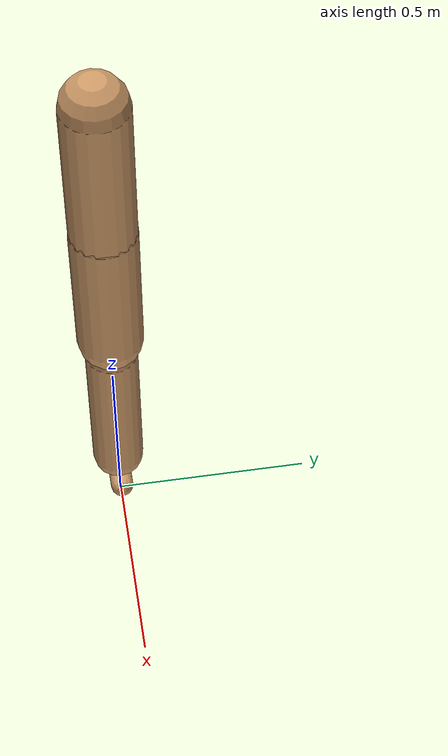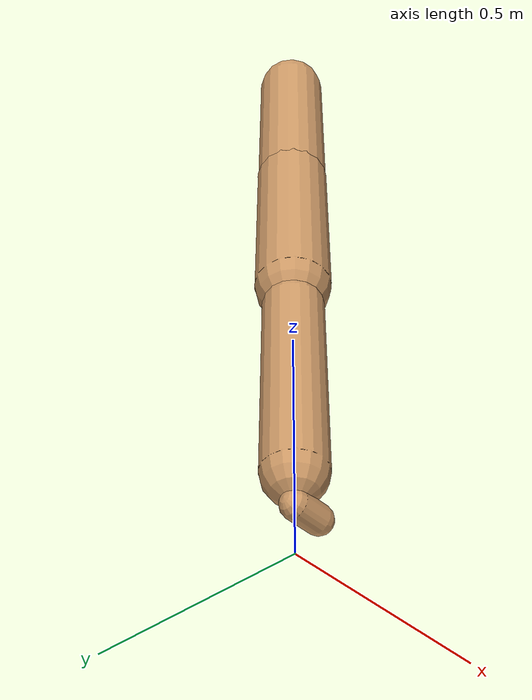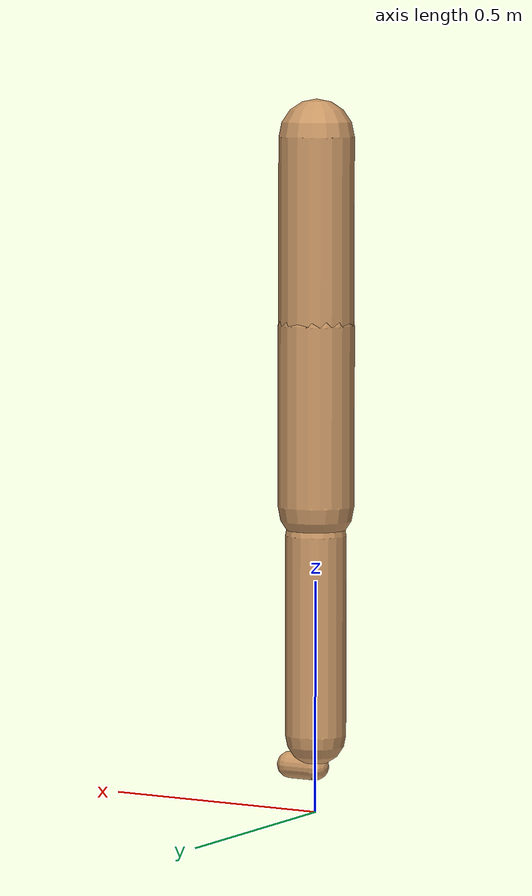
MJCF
<mujoco model="walker2d">
  <compiler angle="degree" coordinate="global" inertiafromgeom="true" />
  <default>
    <joint armature="0.01" damping=".1" limited="true" />
    <geom conaffinity="0" condim="3" contype="1" density="1000" friction="0.8 .1 .1" rgba="0.8 0.6 .4 1" />
  </default>
  <option integrator="RK4" timestep="0.002" />
  <worldbody>

    <body name="torso" pos="0 0 -0.13188718976489566">
      <joint armature="0" axis="1 0 0" damping="0" limited="false" name="ignorex" pos="0 0 0" stiffness="0" type="slide" />
      <joint armature="0" axis="0 0 1" damping="0" limited="false" name="ignorez" pos="0 0 0" ref="1.25" stiffness="0" type="slide" />
      <joint armature="0" axis="0 1 0" damping="0" limited="false" name="ignorey" pos="0 0 0" stiffness="0" type="hinge" />
      <geom fromto="0 0 1.45 0 0 1.05" name="torso_geom" size="0.0810392550587909" type="capsule" />
      <body name="thigh">
        <joint axis="0 -1 0" name="thigh_joint" pos="0 0 1.05" range="-150 0" type="hinge" />
        <geom fromto="0.0 0.0 1.05 0.0 0.0 0.662472879362319" name="thigh_geom" size="0.08230228602798668" type="capsule" />
        <body name="leg" pos="0.0 0.0 0.062472879362319045">
          <joint axis="0 -1 0" name="leg_joint" pos="0 0 0.6" range="-150 0" type="hinge" />
          <geom fromto="0.0 0.0 0.6 0.0 0.0 0.16941431040257665" name="leg_geom" size="0.06584182882238934" type="capsule" />
          <body name="foot" pos="0.0 0.0 0.06941431040257665">
            <joint axis="0 -1 0" name="foot_joint" pos="0 0 0.1" range="-45 45" type="hinge" />
            <geom fromto="0.0 0.0 0.1 0.06112731724670675 0.0 0.1" name="foot_geom" size="0.029312746893423836" type="capsule" />
          </body>
        </body>
      </body>

      <body name="thigh_left">
        <joint axis="0 -1 0" name="thigh_left_joint" pos="0 0 1.05" range="-150 0" type="hinge" />
        <geom fromto="0.0 0.0 1.05 0.0 0.0 0.662472879362319" name="thigh_left_geom" rgba=".7 .3 .6 1" size="0.08230228602798668" type="capsule" />
        <body name="leg_left" pos="0.0 0.0 0.062472879362319045">
          <joint axis="0 -1 0" name="leg_left_joint" pos="0 0 0.6" range="-150 0" type="hinge" />
          <geom fromto="0.0 0.0 0.6 0.0 0.0 0.16941431040257665" name="leg_left_geom" rgba=".7 .3 .6 1" size="0.06584182882238934" type="capsule" />
          <body name="foot_left" pos="0.0 0.0 0.06941431040257665">
            <joint axis="0 -1 0" name="foot_left_joint" pos="0 0 0.1" range="-45 45" type="hinge" />
            <geom fromto="0.0 0.0 0.1 0.06112731724670675 0.0 0.1" name="foot_left_geom" rgba=".7 .3 .6 1" size="0.029312746893423836" type="capsule" />
          </body>
        </body>
      </body>
    </body>
  </worldbody>
  <actuator>

    <motor ctrllimited="true" ctrlrange="-1.0 1.0" gear="100" joint="thigh_joint" />
    <motor ctrllimited="true" ctrlrange="-1.0 1.0" gear="100" joint="leg_joint" />
    <motor ctrllimited="true" ctrlrange="-1.0 1.0" gear="100" joint="foot_joint" />
    <motor ctrllimited="true" ctrlrange="-1.0 1.0" gear="100" joint="thigh_left_joint" />
    <motor ctrllimited="true" ctrlrange="-1.0 1.0" gear="100" joint="leg_left_joint" />
    <motor ctrllimited="true" ctrlrange="-1.0 1.0" gear="100" joint="foot_left_joint" />

  </actuator>
</mujoco>
